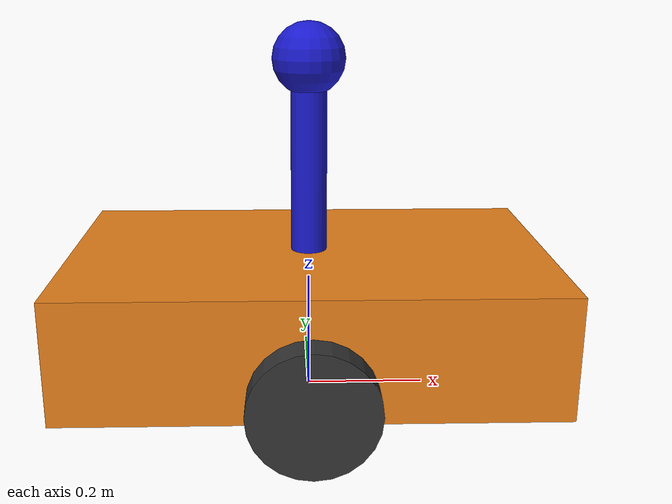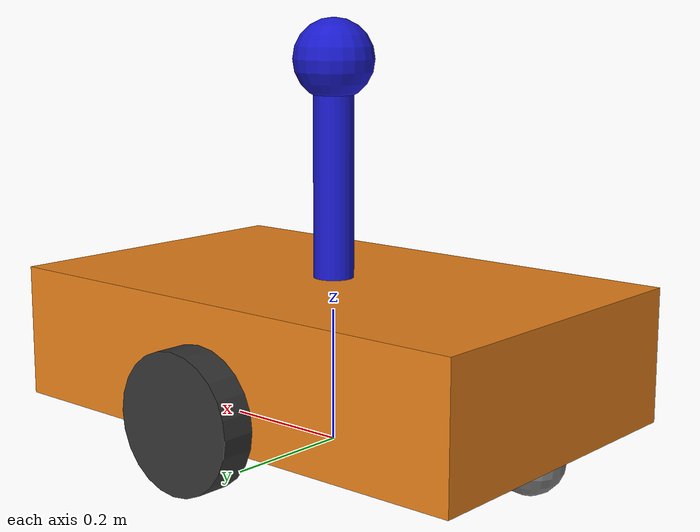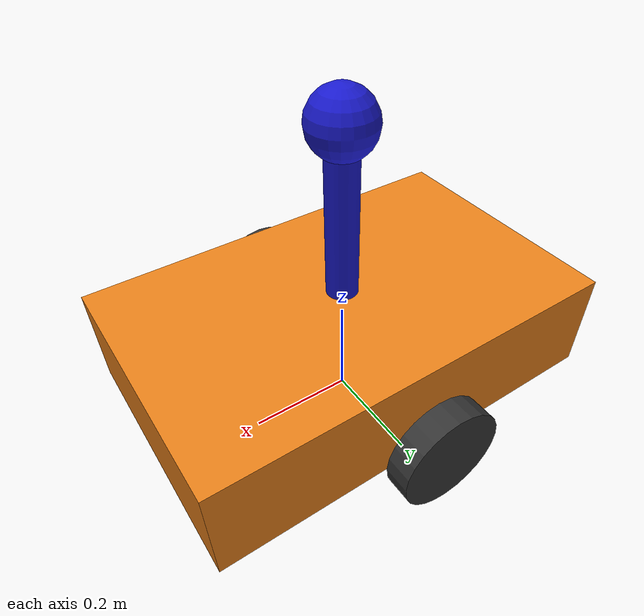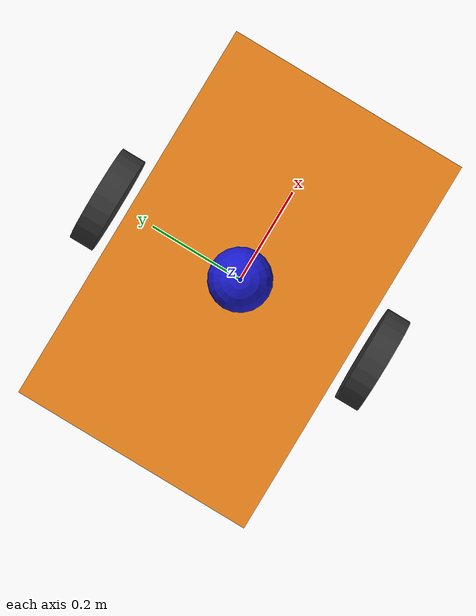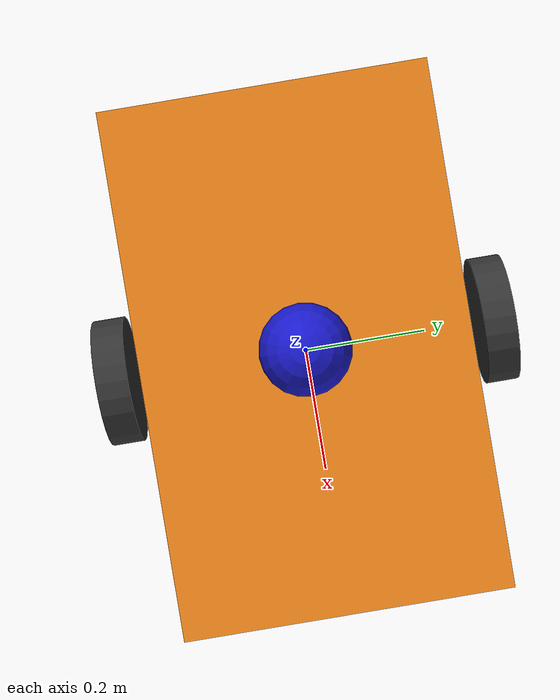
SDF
<?xml version="1.0"?>
<sdf version="1.9">
  <model name="sitebot">
    <static>false</static>

    <!-- Chassis -->
    <link name="chassis">
      <pose>0 0 0.15 0 0 0</pose>
      <inertial>
        <mass>50</mass>
        <inertia>
          <ixx>2.0</ixx>
          <iyy>2.0</iyy>
          <izz>1.0</izz>
        </inertia>
      </inertial>

      <!-- Main body -->
      <visual name="chassis_visual">
        <geometry>
          <box><size>0.8 0.5 0.2</size></box>
        </geometry>
        <material>
          <ambient>0.9 0.5 0.1 1</ambient>
          <diffuse>0.9 0.5 0.1 1</diffuse>
        </material>
      </visual>
      <collision name="chassis_collision">
        <geometry>
          <box><size>0.8 0.5 0.2</size></box>
        </geometry>
      </collision>

      <!-- Sensor mast -->
      <visual name="mast_visual">
        <pose>0 0 0.25 0 0 0</pose>
        <geometry>
          <cylinder><radius>0.03</radius><length>0.3</length></cylinder>
        </geometry>
        <material>
          <ambient>0.1 0.1 0.8 1</ambient>
          <diffuse>0.1 0.1 0.8 1</diffuse>
        </material>
      </visual>

      <!-- Sensor head -->
      <visual name="sensor_head_visual">
        <pose>0 0 0.42 0 0 0</pose>
        <geometry>
          <sphere><radius>0.06</radius></sphere>
        </geometry>
        <material>
          <ambient>0.1 0.1 0.8 1</ambient>
          <diffuse>0.1 0.1 0.8 1</diffuse>
        </material>
      </visual>

      <!-- CPU-based Lidar Sensor -->
      <sensor name="lidar" type="gpu_lidar">
        <pose>0 0 0.42 0 0 0</pose>
        <topic>/scan</topic>
        <update_rate>10</update_rate>
        <lidar>
          <scan>
            <horizontal>
              <samples>360</samples>
              <resolution>1</resolution>
              <min_angle>-3.14159</min_angle>
              <max_angle>3.14159</max_angle>
            </horizontal>
          </scan>
          <range>
            <min>0.1</min>
            <max>30.0</max>
            <resolution>0.01</resolution>
          </range>
          <noise>
            <type>gaussian</type>
            <mean>0</mean>
            <stddev>0.01</stddev>
          </noise>
        </lidar>
        <visualize>true</visualize>
        <always_on>true</always_on>
      </sensor>

      <!-- IMU Sensor -->
      <sensor name="imu" type="imu">
        <pose>0 0 0.15 0 0 0</pose>
        <topic>/imu</topic>
        <update_rate>100</update_rate>
        <imu>
          <angular_velocity>
            <x><noise type="gaussian"><mean>0</mean><stddev>0.001</stddev></noise></x>
            <y><noise type="gaussian"><mean>0</mean><stddev>0.001</stddev></noise></y>
            <z><noise type="gaussian"><mean>0</mean><stddev>0.001</stddev></noise></z>
          </angular_velocity>
          <linear_acceleration>
            <x><noise type="gaussian"><mean>0</mean><stddev>0.01</stddev></noise></x>
            <y><noise type="gaussian"><mean>0</mean><stddev>0.01</stddev></noise></y>
            <z><noise type="gaussian"><mean>0</mean><stddev>0.01</stddev></noise></z>
          </linear_acceleration>
        </imu>
        <always_on>true</always_on>
      </sensor>
    </link>

    <!-- Left wheel -->
    <link name="left_wheel">
      <pose>0 0.3 0.1 -1.5708 0 0</pose>
      <inertial>
        <mass>2</mass>
        <inertia>
          <ixx>0.02</ixx>
          <iyy>0.04</iyy>
          <izz>0.02</izz>
        </inertia>
      </inertial>
      <visual name="left_wheel_visual">
        <geometry>
          <cylinder><radius>0.1</radius><length>0.05</length></cylinder>
        </geometry>
        <material>
          <ambient>0.2 0.2 0.2 1</ambient>
          <diffuse>0.2 0.2 0.2 1</diffuse>
        </material>
      </visual>
      <collision name="left_wheel_collision">
        <geometry>
          <cylinder><radius>0.1</radius><length>0.05</length></cylinder>
        </geometry>
        <surface>
          <friction>
            <ode><mu>1.5</mu><mu2>1.5</mu2></ode>
          </friction>
        </surface>
      </collision>
    </link>

    <!-- Right wheel -->
    <link name="right_wheel">
      <pose>0 -0.3 0.1 -1.5708 0 0</pose>
      <inertial>
        <mass>2</mass>
        <inertia>
          <ixx>0.02</ixx>
          <iyy>0.04</iyy>
          <izz>0.02</izz>
        </inertia>
      </inertial>
      <visual name="right_wheel_visual">
        <geometry>
          <cylinder><radius>0.1</radius><length>0.05</length></cylinder>
        </geometry>
        <material>
          <ambient>0.2 0.2 0.2 1</ambient>
          <diffuse>0.2 0.2 0.2 1</diffuse>
        </material>
      </visual>
      <collision name="right_wheel_collision">
        <geometry>
          <cylinder><radius>0.1</radius><length>0.05</length></cylinder>
        </geometry>
        <surface>
          <friction>
            <ode><mu>1.5</mu><mu2>1.5</mu2></ode>
          </friction>
        </surface>
      </collision>
    </link>

    <!-- Front caster -->
    <link name="front_caster">
      <pose>0.35 0 0.05 0 0 0</pose>
      <inertial>
        <mass>0.5</mass>
        <inertia>
          <ixx>0.001</ixx>
          <iyy>0.001</iyy>
          <izz>0.001</izz>
        </inertia>
      </inertial>
      <visual name="front_caster_visual">
        <geometry>
          <sphere><radius>0.05</radius></sphere>
        </geometry>
        <material>
          <ambient>0.5 0.5 0.5 1</ambient>
          <diffuse>0.5 0.5 0.5 1</diffuse>
        </material>
      </visual>
      <collision name="front_caster_collision">
        <geometry>
          <sphere><radius>0.05</radius></sphere>
        </geometry>
        <surface>
          <friction>
            <ode><mu>0.01</mu><mu2>0.01</mu2></ode>
          </friction>
        </surface>
      </collision>
    </link>

    <!-- Rear caster -->
    <link name="rear_caster">
      <pose>-0.35 0 0.05 0 0 0</pose>
      <inertial>
        <mass>0.5</mass>
        <inertia>
          <ixx>0.001</ixx>
          <iyy>0.001</iyy>
          <izz>0.001</izz>
        </inertia>
      </inertial>
      <visual name="rear_caster_visual">
        <geometry>
          <sphere><radius>0.05</radius></sphere>
        </geometry>
        <material>
          <ambient>0.5 0.5 0.5 1</ambient>
          <diffuse>0.5 0.5 0.5 1</diffuse>
        </material>
      </visual>
      <collision name="rear_caster_collision">
        <geometry>
          <sphere><radius>0.05</radius></sphere>
        </geometry>
        <surface>
          <friction>
            <ode><mu>0.01</mu><mu2>0.01</mu2></ode>
          </friction>
        </surface>
      </collision>
    </link>

    <!-- Joints -->
    <joint name="left_wheel_joint" type="revolute">
      <parent>chassis</parent>
      <child>left_wheel</child>
      <axis>
        <xyz>0 0 1</xyz>
        <limit>
          <lower>-1e16</lower>
          <upper>1e16</upper>
        </limit>
      </axis>
    </joint>

    <joint name="right_wheel_joint" type="revolute">
      <parent>chassis</parent>
      <child>right_wheel</child>
      <axis>
        <xyz>0 0 1</xyz>
        <limit>
          <lower>-1e16</lower>
          <upper>1e16</upper>
        </limit>
      </axis>
    </joint>

    <joint name="front_caster_joint" type="ball">
      <parent>chassis</parent>
      <child>front_caster</child>
    </joint>

    <joint name="rear_caster_joint" type="ball">
      <parent>chassis</parent>
      <child>rear_caster</child>
    </joint>

    <!-- Diff Drive Plugin -->
    <plugin filename="gz-sim-diff-drive-system" name="gz::sim::systems::DiffDrive">
      <left_joint>left_wheel_joint</left_joint>
      <right_joint>right_wheel_joint</right_joint>
      <wheel_separation>0.6</wheel_separation>
      <wheel_radius>0.1</wheel_radius>
      <max_linear_acceleration>1.0</max_linear_acceleration>
      <max_angular_acceleration>2.0</max_angular_acceleration>
      <odom_publish_frequency>50</odom_publish_frequency>
      <topic>/cmd_vel</topic>
      <odom_topic>/odom</odom_topic>
      <frame_id>odom</frame_id>
      <child_frame_id>chassis</child_frame_id>
    </plugin>

    <!-- Joint State Publisher Plugin -->
    <plugin filename="gz-sim-joint-state-publisher-system" name="gz::sim::systems::JointStatePublisher">
      <joint_name>left_wheel_joint</joint_name>
      <joint_name>right_wheel_joint</joint_name>
      <topic>/joint_states</topic>
    </plugin>

    <!-- Sensors Plugin for Lidar and IMU -->
    <plugin filename="gz-sim-sensors-system" name="gz::sim::systems::Sensors">
      <render_engine>ogre2</render_engine>
    </plugin>

    <!-- IMU Plugin -->
    <plugin filename="gz-sim-imu-system" name="gz::sim::systems::Imu"/>

  </model>
</sdf>
